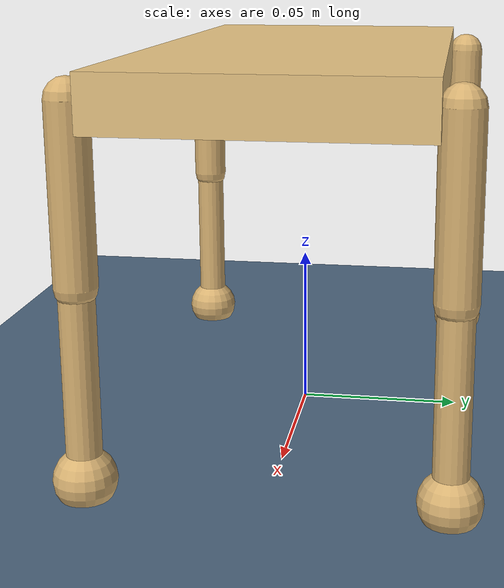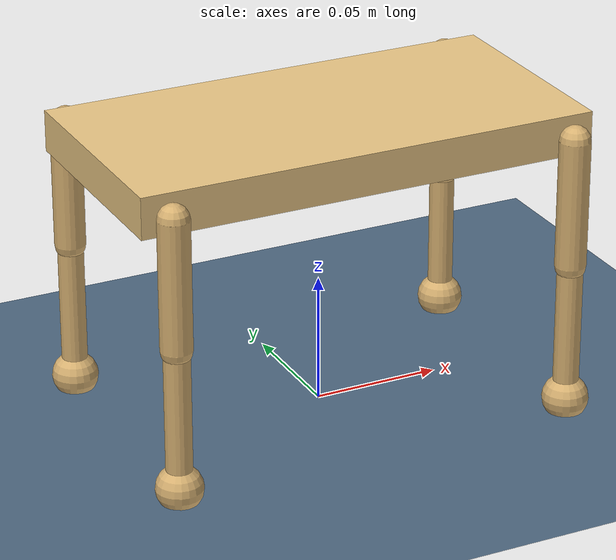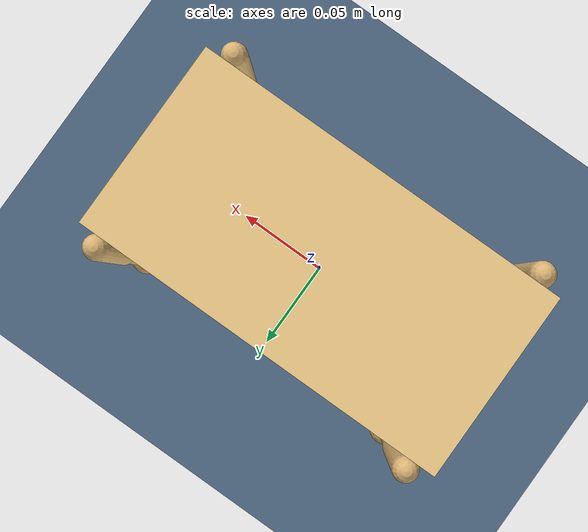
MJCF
<mujoco model="kel_cardboard_quad">
  <compiler angle="radian" autolimits="true"/>
  <option timestep="0.005" gravity="0 0 -9.81"/>

  <default>
    <!-- all joints swing in the forward/back plane (walking direction) -->
    <joint type="hinge" axis="0 1 0" damping="0.05" armature="0.01"/>
    <geom density="250" friction="1 0.5 0.5" rgba="0.85 0.70 0.45 1"/>
    <!-- position servo, capped at an SG-90's real torque -->
    <position kp="2.5" forcerange="-0.18 0.18"/>
  </default>

  <worldbody>
    <light pos="0.3 0.2 1.2" dir="0 0 -1" diffuse="0.9 0.9 0.9"/>
    <geom name="floor" type="plane" size="3 3 0.1" rgba="0.30 0.40 0.50 1"/>

    <body name="torso" pos="0 0 0.11">
      <freejoint/>
      <geom name="body" type="box" size="0.09 0.045 0.008" rgba="0.92 0.78 0.52 1"/>

      <body name="fl_hip" pos="0.08 0.05 0">
        <joint name="fl_hip" range="-0.9 0.9"/>
        <geom name="fl_thigh" type="capsule" fromto="0 0 0  0 0 -0.05" size="0.006"/>
        <body name="fl_knee" pos="0 0 -0.05">
          <joint name="fl_knee" range="-0.3 1.6"/>
          <geom name="fl_shin" type="capsule" fromto="0 0 0  0 0 -0.055" size="0.005"/>
          <geom name="fl_foot" type="sphere" pos="0 0 -0.055" size="0.009" friction="1.5 0.5 0.5"/>
        </body>
      </body>

      <body name="fr_hip" pos="0.08 -0.05 0">
        <joint name="fr_hip" range="-0.9 0.9"/>
        <geom name="fr_thigh" type="capsule" fromto="0 0 0  0 0 -0.05" size="0.006"/>
        <body name="fr_knee" pos="0 0 -0.05">
          <joint name="fr_knee" range="-0.3 1.6"/>
          <geom name="fr_shin" type="capsule" fromto="0 0 0  0 0 -0.055" size="0.005"/>
          <geom name="fr_foot" type="sphere" pos="0 0 -0.055" size="0.009" friction="1.5 0.5 0.5"/>
        </body>
      </body>

      <body name="bl_hip" pos="-0.08 0.05 0">
        <joint name="bl_hip" range="-0.9 0.9"/>
        <geom name="bl_thigh" type="capsule" fromto="0 0 0  0 0 -0.05" size="0.006"/>
        <body name="bl_knee" pos="0 0 -0.05">
          <joint name="bl_knee" range="-0.3 1.6"/>
          <geom name="bl_shin" type="capsule" fromto="0 0 0  0 0 -0.055" size="0.005"/>
          <geom name="bl_foot" type="sphere" pos="0 0 -0.055" size="0.009" friction="1.5 0.5 0.5"/>
        </body>
      </body>

      <body name="br_hip" pos="-0.08 -0.05 0">
        <joint name="br_hip" range="-0.9 0.9"/>
        <geom name="br_thigh" type="capsule" fromto="0 0 0  0 0 -0.05" size="0.006"/>
        <body name="br_knee" pos="0 0 -0.05">
          <joint name="br_knee" range="-0.3 1.6"/>
          <geom name="br_shin" type="capsule" fromto="0 0 0  0 0 -0.055" size="0.005"/>
          <geom name="br_foot" type="sphere" pos="0 0 -0.055" size="0.009" friction="1.5 0.5 0.5"/>
        </body>
      </body>
    </body>
  </worldbody>

  <actuator>
    <position name="fl_hip" joint="fl_hip"/>
    <position name="fl_knee" joint="fl_knee"/>
    <position name="fr_hip" joint="fr_hip"/>
    <position name="fr_knee" joint="fr_knee"/>
    <position name="bl_hip" joint="bl_hip"/>
    <position name="bl_knee" joint="bl_knee"/>
    <position name="br_hip" joint="br_hip"/>
    <position name="br_knee" joint="br_knee"/>
  </actuator>

  <keyframe>
    <!-- home: a crouched, dog-like stance (thigh forward, knee bent). Also a real test of
         whether the weak SG-90 servos can HOLD a bent-leg pose against gravity. -->
    <key name="home"
         qpos="0 0 0.09  1 0 0 0   -0.4 0.8  -0.4 0.8  -0.4 0.8  -0.4 0.8"
         ctrl="-0.4 0.8 -0.4 0.8 -0.4 0.8 -0.4 0.8"/>
  </keyframe>
</mujoco>
